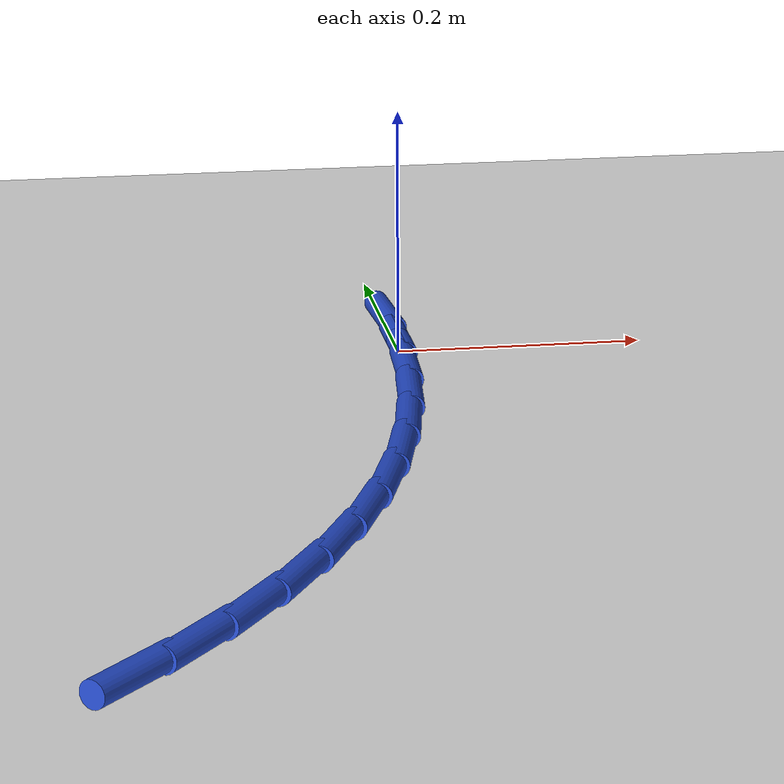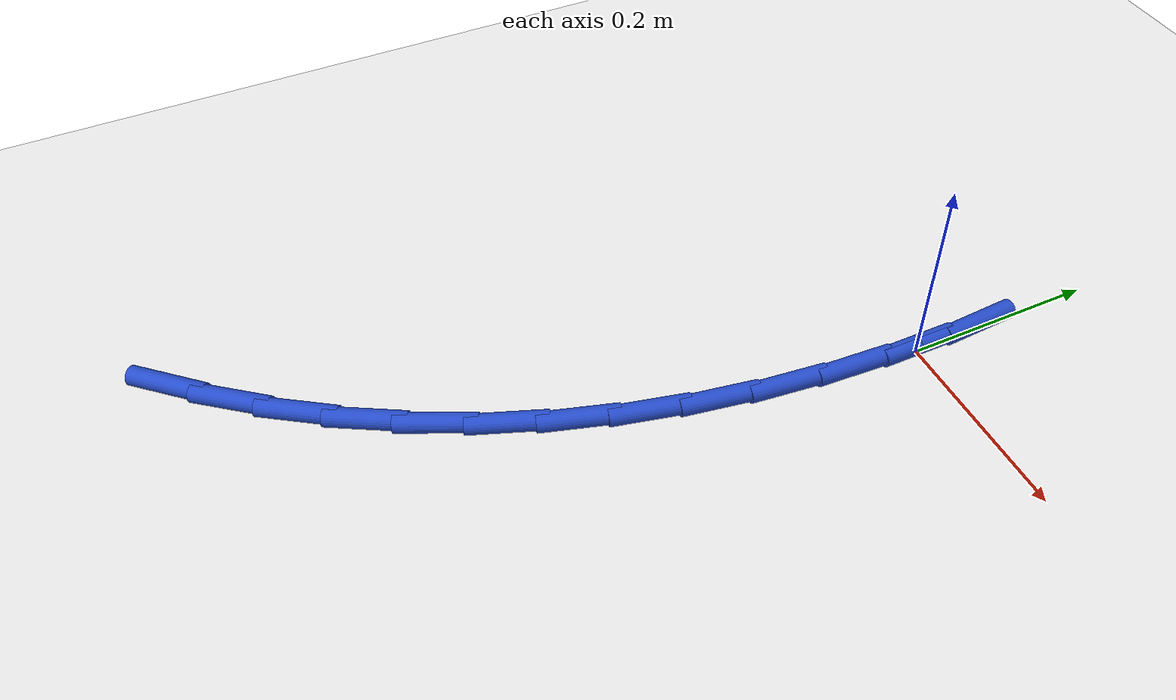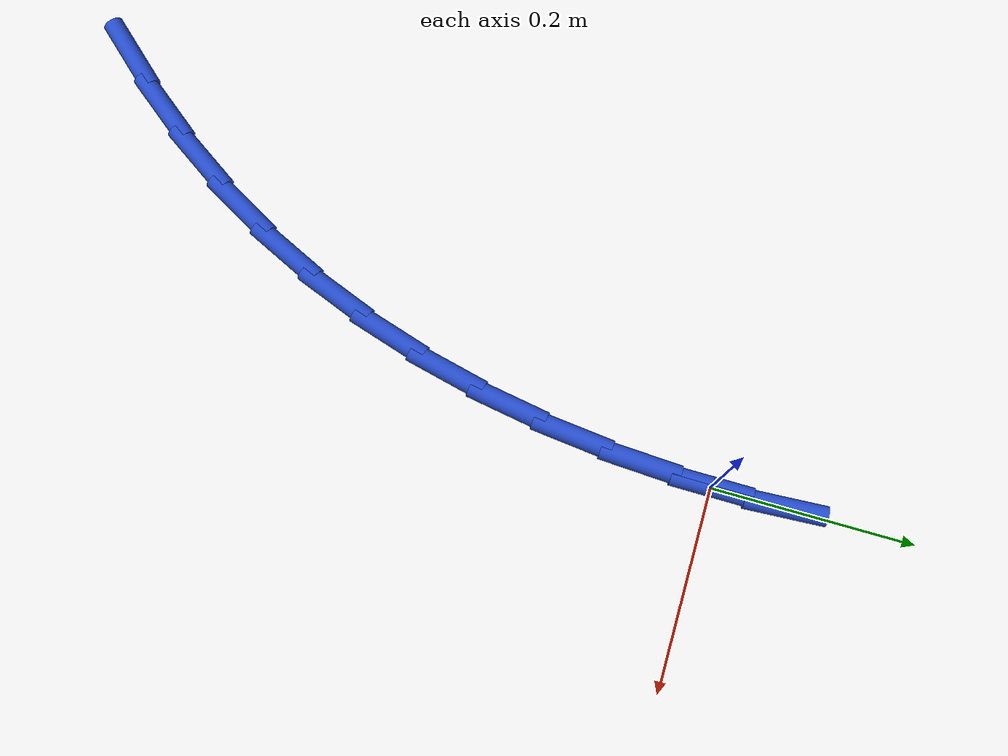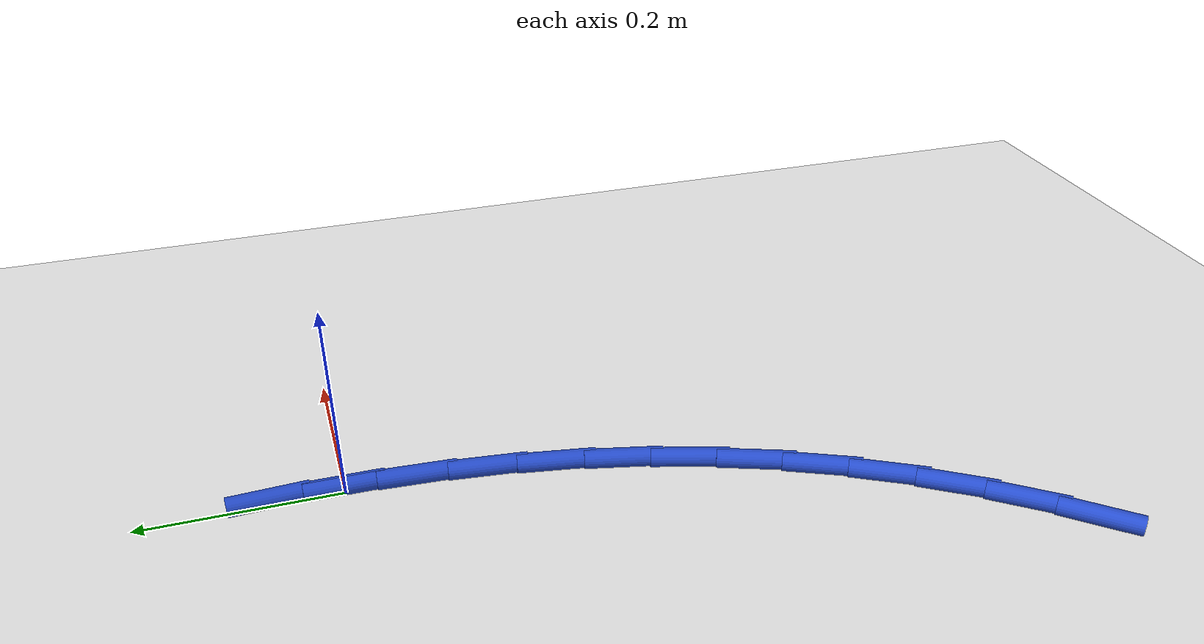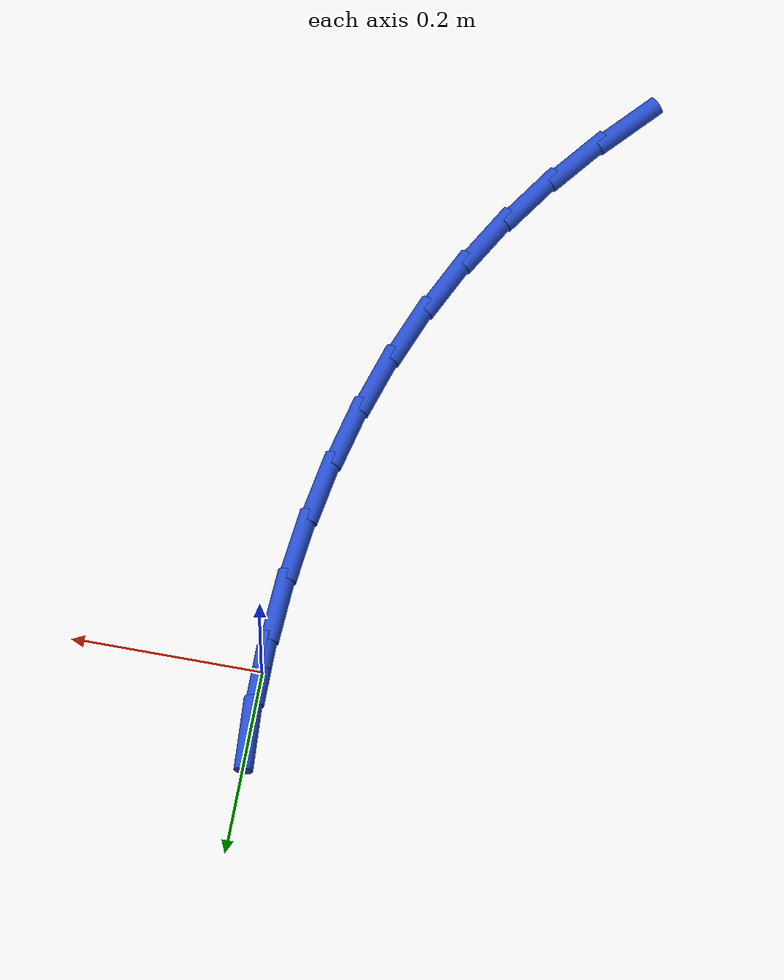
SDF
<sdf version="1.6">
 <world name="default">
  <model name="ground_plane">
   <static>1</static>
   <link name="link">
    <collision name="collision">
     <geometry><plane><normal>0 0 1</normal><size>100 100</size></plane></geometry>
     <surface><friction><ode><mu>100</mu><mu2>50</mu2></ode></friction></surface>
    </collision>
    <visual name="visual">
     <cast_shadows>0</cast_shadows>
     <geometry><plane><normal>0 0 1</normal><size>100 100</size></plane></geometry>
     <material>
      <script><uri>file://media/materials/scripts/gazebo.material</uri><name>Gazebo/WhiteGlow</name></script>
     </material>
    </visual>
   </link>
  </model>
  <model name="line">
   <link name="link_0">
    <pose>2.6020852139652106e-17 5.551115123125783e-17 0.01 0 1.57 1.569465206115109</pose>
    <collision name="collision">
     <geometry><cylinder><radius>0.01</radius><length>0.08</length></cylinder></geometry>
    </collision>
    <visual name="visual">
     <material>
      <script><name>Gazebo/Blue</name><uri>file://media/materials/scripts/gazebo.material</uri></script>
     </material>
     <geometry><cylinder><radius>0.01</radius><length>0.08</length></cylinder></geometry>
    </visual>
   </link>
   <link name="link_1">
    <pose>9.582591266656424e-05 0.0719888568513661 0.01 0 1.57 -1.5149833127944654</pose>
    <collision name="collision">
     <geometry><cylinder><radius>0.01</radius><length>0.08</length></cylinder></geometry>
    </collision>
    <visual name="visual">
     <material>
      <script><name>Gazebo/Blue</name><uri>file://media/materials/scripts/gazebo.material</uri></script>
     </material>
     <geometry><cylinder><radius>0.01</radius><length>0.08</length></cylinder></geometry>
    </visual>
   </link>
   <link name="link_99">
    <pose>-0.2651253659738046 -0.6721117640165523 0.01 0 1.57 0.8370514874199083</pose>
    <collision name="collision">
     <geometry><cylinder><radius>0.01</radius><length>0.08</length></cylinder></geometry>
    </collision>
    <visual name="visual">
     <material>
      <script><name>Gazebo/Blue</name><uri>file://media/materials/scripts/gazebo.material</uri></script>
     </material>
     <geometry><cylinder><radius>0.01</radius><length>0.08</length></cylinder></geometry>
    </visual>
   </link>
   <link name="link_100">
    <pose>-0.22029627315872236 -0.6223947000116881 0.01 0 1.57 0.9056412176723821</pose>
    <collision name="collision">
     <geometry><cylinder><radius>0.01</radius><length>0.08</length></cylinder></geometry>
    </collision>
    <visual name="visual">
     <material>
      <script><name>Gazebo/Blue</name><uri>file://media/materials/scripts/gazebo.material</uri></script>
     </material>
     <geometry><cylinder><radius>0.01</radius><length>0.08</length></cylinder></geometry>
    </visual>
   </link>
   <link name="link_101">
    <pose>-0.17927222345397734 -0.5700946829023701 0.01 0 1.57 0.9796413123449776</pose>
    <collision name="collision">
     <geometry><cylinder><radius>0.01</radius><length>0.08</length></cylinder></geometry>
    </collision>
    <visual name="visual">
     <material>
      <script><name>Gazebo/Blue</name><uri>file://media/materials/scripts/gazebo.material</uri></script>
     </material>
     <geometry><cylinder><radius>0.01</radius><length>0.08</length></cylinder></geometry>
    </visual>
   </link>
   <link name="link_102">
    <pose>-0.1424797976137511 -0.5152812220565245 0.01 0 1.57 1.0560388972815071</pose>
    <collision name="collision">
     <geometry><cylinder><radius>0.01</radius><length>0.08</length></cylinder></geometry>
    </collision>
    <visual name="visual">
     <material>
      <script><name>Gazebo/Blue</name><uri>file://media/materials/scripts/gazebo.material</uri></script>
     </material>
     <geometry><cylinder><radius>0.01</radius><length>0.08</length></cylinder></geometry>
    </visual>
   </link>
   <link name="link_103">
    <pose>-0.11010776908078922 -0.45804853941126117 0.01 0 1.57 1.1307510453100609</pose>
    <collision name="collision">
     <geometry><cylinder><radius>0.01</radius><length>0.08</length></cylinder></geometry>
    </collision>
    <visual name="visual">
     <material>
      <script><name>Gazebo/Blue</name><uri>file://media/materials/scripts/gazebo.material</uri></script>
     </material>
     <geometry><cylinder><radius>0.01</radius><length>0.08</length></cylinder></geometry>
    </visual>
   </link>
   <link name="link_104">
    <pose>-0.08207889313805014 -0.39851850110073567 0.01 0 1.57 1.2029919695368734</pose>
    <collision name="collision">
     <geometry><cylinder><radius>0.01</radius><length>0.08</length></cylinder></geometry>
    </collision>
    <visual name="visual">
     <material>
      <script><name>Gazebo/Blue</name><uri>file://media/materials/scripts/gazebo.material</uri></script>
     </material>
     <geometry><cylinder><radius>0.01</radius><length>0.08</length></cylinder></geometry>
    </visual>
   </link>
   <link name="link_105">
    <pose>-0.058301886894886266 -0.3368144320844658 0.01 0 1.57 1.2723036186666532</pose>
    <collision name="collision">
     <geometry><cylinder><radius>0.01</radius><length>0.08</length></cylinder></geometry>
    </collision>
    <visual name="visual">
     <material>
      <script><name>Gazebo/Blue</name><uri>file://media/materials/scripts/gazebo.material</uri></script>
     </material>
     <geometry><cylinder><radius>0.01</radius><length>0.08</length></cylinder></geometry>
    </visual>
   </link>
   <link name="link_106">
    <pose>-0.03868546746064875 -0.2730596573219661 0.01 0 1.57 1.3383717942206406</pose>
    <collision name="collision">
     <geometry><cylinder><radius>0.01</radius><length>0.08</length></cylinder></geometry>
    </collision>
    <visual name="visual">
     <material>
      <script><name>Gazebo/Blue</name><uri>file://media/materials/scripts/gazebo.material</uri></script>
     </material>
     <geometry><cylinder><radius>0.01</radius><length>0.08</length></cylinder></geometry>
    </visual>
   </link>
   <link name="link_107">
    <pose>-0.02313835194468979 -0.20737750177275416 0.01 0 1.57 1.401017625575015</pose>
    <collision name="collision">
     <geometry><cylinder><radius>0.01</radius><length>0.08</length></cylinder></geometry>
    </collision>
    <visual name="visual">
     <material>
      <script><name>Gazebo/Blue</name><uri>file://media/materials/scripts/gazebo.material</uri></script>
     </material>
     <geometry><cylinder><radius>0.01</radius><length>0.08</length></cylinder></geometry>
    </visual>
   </link>
   <link name="link_108">
    <pose>-0.011569257456360742 -0.13989129039634451 0.01 0 1.57 1.4601799429761049</pose>
    <collision name="collision">
     <geometry><cylinder><radius>0.01</radius><length>0.08</length></cylinder></geometry>
    </collision>
    <visual name="visual">
     <material>
      <script><name>Gazebo/Blue</name><uri>file://media/materials/scripts/gazebo.material</uri></script>
     </material>
     <geometry><cylinder><radius>0.01</radius><length>0.08</length></cylinder></geometry>
    </visual>
   </link>
   <link name="link_109">
    <pose>-0.0038869011050136175 -0.07072434815225494 0.01 0 1.57 1.5158931016731558</pose>
    <collision name="collision">
     <geometry><cylinder><radius>0.01</radius><length>0.08</length></cylinder></geometry>
    </collision>
    <visual name="visual">
     <material>
      <script><name>Gazebo/Blue</name><uri>file://media/materials/scripts/gazebo.material</uri></script>
     </material>
     <geometry><cylinder><radius>0.01</radius><length>0.08</length></cylinder></geometry>
    </visual>
   </link>
   <link name="link_110">
    <pose>3.8163916471489756e-17 1.3877787807814457e-16 0.01 0 1.57 1.568264005054901</pose>
    <collision name="collision">
     <geometry><cylinder><radius>0.01</radius><length>0.08</length></cylinder></geometry>
    </collision>
    <visual name="visual">
     <material>
      <script><name>Gazebo/Blue</name><uri>file://media/materials/scripts/gazebo.material</uri></script>
     </material>
     <geometry><cylinder><radius>0.01</radius><length>0.08</length></cylinder></geometry>
    </visual>
   </link>
  </model>
 </world>
</sdf>
